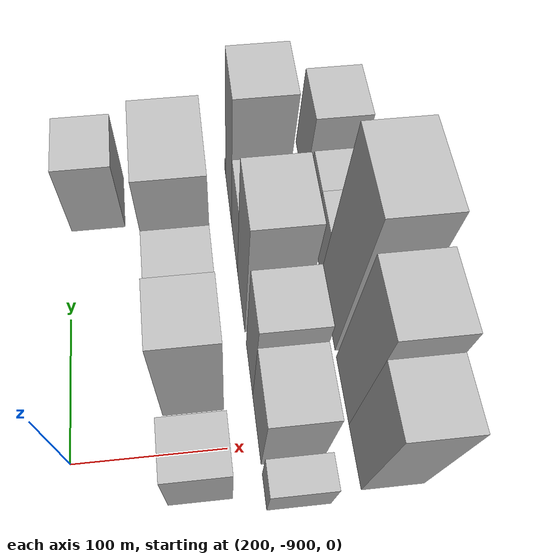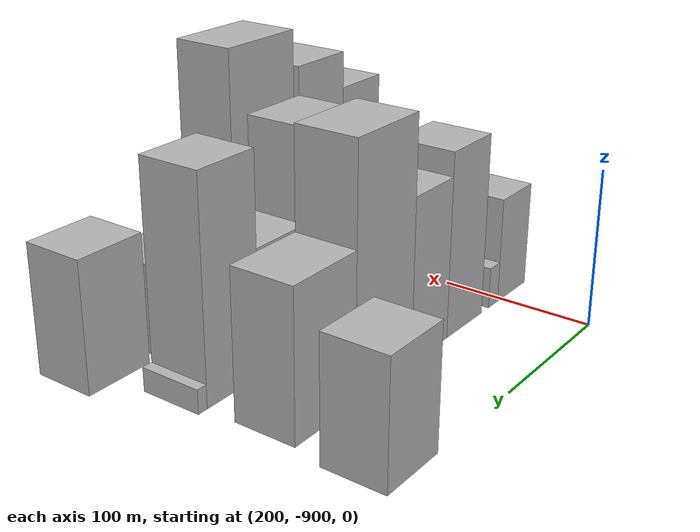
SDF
<sdf version="1.6">
 <world name="default">
  <model name="building_115">
   <static>1</static>
   <pose>220.0000 -704.5168 0 0.000000 0.000000 0.000000</pose>
   <link name="link">
    <pose>0 0 37.50 0 0 0</pose>
    <collision name="collision"><geometry><box><size>40.0000 44.8776 75.0000</size></box></geometry></collision>
    <visual name="visual">
     <cast_shadows>0</cast_shadows>
     <geometry><box><size>40.0000 44.8776 75.0000</size></box></geometry>
     <material>
      <script>
       <uri>model://HANNAS_wall/materials/scripts</uri>
       <uri>model://HANNAS_wall/materials/textures</uri>
       <name>vrc/HANNAS_wall</name>
      </script>
     </material>
    </visual>
   </link>
  </model>
  <model name="building_167">
   <static>1</static>
   <pose>280.0000 -913.1073 0 0.000000 0.000000 0.000000</pose>
   <link name="link">
    <pose>0 0 34.50 0 0 0</pose>
    <collision name="collision"><geometry><box><size>40.0000 35.7853 69.0000</size></box></geometry></collision>
    <visual name="visual">
     <cast_shadows>0</cast_shadows>
     <geometry><box><size>40.0000 35.7853 69.0000</size></box></geometry>
     <material>
      <script>
       <uri>model://HANNAS_wall/materials/scripts</uri>
       <uri>model://HANNAS_wall/materials/textures</uri>
       <name>vrc/HANNAS_wall</name>
      </script>
     </material>
    </visual>
   </link>
  </model>
  <model name="building_168">
   <static>1</static>
   <pose>280.0000 -889.4634 0 0.000000 0.000000 0.000000</pose>
   <link name="link">
    <pose>0 0 13.50 0 0 0</pose>
    <collision name="collision"><geometry><box><size>40.0000 11.5025 27.0000</size></box></geometry></collision>
    <visual name="visual">
     <cast_shadows>0</cast_shadows>
     <geometry><box><size>40.0000 11.5025 27.0000</size></box></geometry>
     <material>
      <script>
       <uri>model://HANNAS_wall/materials/scripts</uri>
       <uri>model://HANNAS_wall/materials/textures</uri>
       <name>vrc/HANNAS_wall</name>
      </script>
     </material>
    </visual>
   </link>
  </model>
  <model name="building_169">
   <static>1</static>
   <pose>280.0000 -854.1947 0 0.000000 0.000000 0.000000</pose>
   <link name="link">
    <pose>0 0 58.50 0 0 0</pose>
    <collision name="collision"><geometry><box><size>40.0000 41.0349 117.0000</size></box></geometry></collision>
    <visual name="visual">
     <cast_shadows>0</cast_shadows>
     <geometry><box><size>40.0000 41.0349 117.0000</size></box></geometry>
     <material>
      <script>
       <uri>model://HANNAS_wall/materials/scripts</uri>
       <uri>model://HANNAS_wall/materials/textures</uri>
       <name>vrc/HANNAS_wall</name>
      </script>
     </material>
    </visual>
   </link>
  </model>
  <model name="building_170">
   <static>1</static>
   <pose>280.0000 -814.3763 0 0.000000 0.000000 0.000000</pose>
   <link name="link">
    <pose>0 0 51.00 0 0 0</pose>
    <collision name="collision"><geometry><box><size>40.0000 38.6019 102.0000</size></box></geometry></collision>
    <visual name="visual">
     <cast_shadows>0</cast_shadows>
     <geometry><box><size>40.0000 38.6019 102.0000</size></box></geometry>
     <material>
      <script>
       <uri>model://HANNAS_wall/materials/scripts</uri>
       <uri>model://HANNAS_wall/materials/textures</uri>
       <name>vrc/HANNAS_wall</name>
      </script>
     </material>
    </visual>
   </link>
  </model>
  <model name="building_171">
   <static>1</static>
   <pose>280.0000 -767.6852 0 0.000000 0.000000 0.000000</pose>
   <link name="link">
    <pose>0 0 75.00 0 0 0</pose>
    <collision name="collision"><geometry><box><size>40.0000 54.7802 150.0000</size></box></geometry></collision>
    <visual name="visual">
     <cast_shadows>0</cast_shadows>
     <geometry><box><size>40.0000 54.7802 150.0000</size></box></geometry>
     <material>
      <script>
       <uri>model://HANNAS_wall/materials/scripts</uri>
       <uri>model://HANNAS_wall/materials/textures</uri>
       <name>vrc/HANNAS_wall</name>
      </script>
     </material>
    </visual>
   </link>
  </model>
  <model name="building_172">
   <static>1</static>
   <pose>280.0000 -714.1706 0 0.000000 0.000000 0.000000</pose>
   <link name="link">
    <pose>0 0 45.00 0 0 0</pose>
    <collision name="collision"><geometry><box><size>40.0000 52.2491 90.0000</size></box></geometry></collision>
    <visual name="visual">
     <cast_shadows>0</cast_shadows>
     <geometry><box><size>40.0000 52.2491 90.0000</size></box></geometry>
     <material>
      <script>
       <uri>model://HANNAS_wall/materials/scripts</uri>
       <uri>model://HANNAS_wall/materials/textures</uri>
       <name>vrc/HANNAS_wall</name>
      </script>
     </material>
    </visual>
   </link>
  </model>
  <model name="building_217">
   <static>1</static>
   <pose>340.0000 -929.1100 0 0.000000 0.000000 0.000000</pose>
   <link name="link">
    <pose>0 0 21.00 0 0 0</pose>
    <collision name="collision"><geometry><box><size>40.0000 21.7800 42.0000</size></box></geometry></collision>
    <visual name="visual">
     <cast_shadows>0</cast_shadows>
     <geometry><box><size>40.0000 21.7800 42.0000</size></box></geometry>
     <material>
      <script>
       <uri>model://HANNAS_wall/materials/scripts</uri>
       <uri>model://HANNAS_wall/materials/textures</uri>
       <name>vrc/HANNAS_wall</name>
      </script>
     </material>
    </visual>
   </link>
  </model>
  <model name="building_218">
   <static>1</static>
   <pose>340.0000 -889.9579 0 0.000000 0.000000 0.000000</pose>
   <link name="link">
    <pose>0 0 43.50 0 0 0</pose>
    <collision name="collision"><geometry><box><size>40.0000 44.5242 87.0000</size></box></geometry></collision>
    <visual name="visual">
     <cast_shadows>0</cast_shadows>
     <geometry><box><size>40.0000 44.5242 87.0000</size></box></geometry>
     <material>
      <script>
       <uri>model://HANNAS_wall/materials/scripts</uri>
       <uri>model://HANNAS_wall/materials/textures</uri>
       <name>vrc/HANNAS_wall</name>
      </script>
     </material>
    </visual>
   </link>
  </model>
  <model name="building_219">
   <static>1</static>
   <pose>340.0000 -848.9749 0 0.000000 0.000000 0.000000</pose>
   <link name="link">
    <pose>0 0 54.00 0 0 0</pose>
    <collision name="collision"><geometry><box><size>40.0000 37.4417 108.0000</size></box></geometry></collision>
    <visual name="visual">
     <cast_shadows>0</cast_shadows>
     <geometry><box><size>40.0000 37.4417 108.0000</size></box></geometry>
     <material>
      <script>
       <uri>model://HANNAS_wall/materials/scripts</uri>
       <uri>model://HANNAS_wall/materials/textures</uri>
       <name>vrc/HANNAS_wall</name>
      </script>
     </material>
    </visual>
   </link>
  </model>
  <model name="building_220">
   <static>1</static>
   <pose>340.0000 -797.6520 0 0.000000 0.000000 0.000000</pose>
   <link name="link">
    <pose>0 0 67.50 0 0 0</pose>
    <collision name="collision"><geometry><box><size>40.0000 47.2042 135.0000</size></box></geometry></collision>
    <visual name="visual">
     <cast_shadows>0</cast_shadows>
     <geometry><box><size>40.0000 47.2042 135.0000</size></box></geometry>
     <material>
      <script>
       <uri>model://HANNAS_wall/materials/scripts</uri>
       <uri>model://HANNAS_wall/materials/textures</uri>
       <name>vrc/HANNAS_wall</name>
      </script>
     </material>
    </visual>
   </link>
  </model>
  <model name="building_221">
   <static>1</static>
   <pose>340.0000 -753.0068 0 0.000000 0.000000 0.000000</pose>
   <link name="link">
    <pose>0 0 39.00 0 0 0</pose>
    <collision name="collision"><geometry><box><size>40.0000 42.0861 78.0000</size></box></geometry></collision>
    <visual name="visual">
     <cast_shadows>0</cast_shadows>
     <geometry><box><size>40.0000 42.0861 78.0000</size></box></geometry>
     <material>
      <script>
       <uri>model://HANNAS_wall/materials/scripts</uri>
       <uri>model://HANNAS_wall/materials/textures</uri>
       <name>vrc/HANNAS_wall</name>
      </script>
     </material>
    </visual>
   </link>
  </model>
  <model name="building_222">
   <static>1</static>
   <pose>340.0000 -710.3986 0 0.000000 0.000000 0.000000</pose>
   <link name="link">
    <pose>0 0 67.50 0 0 0</pose>
    <collision name="collision"><geometry><box><size>40.0000 43.1303 135.0000</size></box></geometry></collision>
    <visual name="visual">
     <cast_shadows>0</cast_shadows>
     <geometry><box><size>40.0000 43.1303 135.0000</size></box></geometry>
     <material>
      <script>
       <uri>model://HANNAS_wall/materials/scripts</uri>
       <uri>model://HANNAS_wall/materials/textures</uri>
       <name>vrc/HANNAS_wall</name>
      </script>
     </material>
    </visual>
   </link>
  </model>
  <model name="building_223">
   <static>1</static>
   <pose>340.0000 -685.3732 0 0.000000 0.000000 0.000000</pose>
   <link name="link">
    <pose>0 0 7.50 0 0 0</pose>
    <collision name="collision"><geometry><box><size>40.0000 6.9204 15.0000</size></box></geometry></collision>
    <visual name="visual">
     <cast_shadows>0</cast_shadows>
     <geometry><box><size>40.0000 6.9204 15.0000</size></box></geometry>
     <material>
      <script>
       <uri>model://HANNAS_wall/materials/scripts</uri>
       <uri>model://HANNAS_wall/materials/textures</uri>
       <name>vrc/HANNAS_wall</name>
      </script>
     </material>
    </visual>
   </link>
  </model>
  <model name="building_270">
   <static>1</static>
   <pose>400.0000 -913.4238 0 0.000000 0.000000 0.000000</pose>
   <link name="link">
    <pose>0 0 60.00 0 0 0</pose>
    <collision name="collision"><geometry><box><size>40.0000 41.1525 120.0000</size></box></geometry></collision>
    <visual name="visual">
     <cast_shadows>0</cast_shadows>
     <geometry><box><size>40.0000 41.1525 120.0000</size></box></geometry>
     <material>
      <script>
       <uri>model://HANNAS_wall/materials/scripts</uri>
       <uri>model://HANNAS_wall/materials/textures</uri>
       <name>vrc/HANNAS_wall</name>
      </script>
     </material>
    </visual>
   </link>
  </model>
  <model name="building_271">
   <static>1</static>
   <pose>400.0000 -869.4416 0 0.000000 0.000000 0.000000</pose>
   <link name="link">
    <pose>0 0 72.00 0 0 0</pose>
    <collision name="collision"><geometry><box><size>40.0000 46.8118 144.0000</size></box></geometry></collision>
    <visual name="visual">
     <cast_shadows>0</cast_shadows>
     <geometry><box><size>40.0000 46.8118 144.0000</size></box></geometry>
     <material>
      <script>
       <uri>model://HANNAS_wall/materials/scripts</uri>
       <uri>model://HANNAS_wall/materials/textures</uri>
       <name>vrc/HANNAS_wall</name>
      </script>
     </material>
    </visual>
   </link>
  </model>
  <model name="building_272">
   <static>1</static>
   <pose>400.0000 -811.5729 0 0.000000 0.000000 0.000000</pose>
   <link name="link">
    <pose>0 0 84.00 0 0 0</pose>
    <collision name="collision"><geometry><box><size>40.0000 58.9257 168.0000</size></box></geometry></collision>
    <visual name="visual">
     <cast_shadows>0</cast_shadows>
     <geometry><box><size>40.0000 58.9257 168.0000</size></box></geometry>
     <material>
      <script>
       <uri>model://HANNAS_wall/materials/scripts</uri>
       <uri>model://HANNAS_wall/materials/textures</uri>
       <name>vrc/HANNAS_wall</name>
      </script>
     </material>
    </visual>
   </link>
  </model>
  <model name="building_273">
   <static>1</static>
   <pose>400.0000 -765.2626 0 0.000000 0.000000 0.000000</pose>
   <link name="link">
    <pose>0 0 28.50 0 0 0</pose>
    <collision name="collision"><geometry><box><size>40.0000 33.6948 57.0000</size></box></geometry></collision>
    <visual name="visual">
     <cast_shadows>0</cast_shadows>
     <geometry><box><size>40.0000 33.6948 57.0000</size></box></geometry>
     <material>
      <script>
       <uri>model://HANNAS_wall/materials/scripts</uri>
       <uri>model://HANNAS_wall/materials/textures</uri>
       <name>vrc/HANNAS_wall</name>
      </script>
     </material>
    </visual>
   </link>
  </model>
  <model name="building_274">
   <static>1</static>
   <pose>400.0000 -731.3544 0 0.000000 0.000000 0.000000</pose>
   <link name="link">
    <pose>0 0 28.50 0 0 0</pose>
    <collision name="collision"><geometry><box><size>40.0000 34.1217 57.0000</size></box></geometry></collision>
    <visual name="visual">
     <cast_shadows>0</cast_shadows>
     <geometry><box><size>40.0000 34.1217 57.0000</size></box></geometry>
     <material>
      <script>
       <uri>model://HANNAS_wall/materials/scripts</uri>
       <uri>model://HANNAS_wall/materials/textures</uri>
       <name>vrc/HANNAS_wall</name>
      </script>
     </material>
    </visual>
   </link>
  </model>
  <model name="building_275">
   <static>1</static>
   <pose>400.0000 -683.2492 0 0.000000 0.000000 0.000000</pose>
   <link name="link">
    <pose>0 0 40.50 0 0 0</pose>
    <collision name="collision"><geometry><box><size>40.0000 46.0885 81.0000</size></box></geometry></collision>
    <visual name="visual">
     <cast_shadows>0</cast_shadows>
     <geometry><box><size>40.0000 46.0885 81.0000</size></box></geometry>
     <material>
      <script>
       <uri>model://HANNAS_wall/materials/scripts</uri>
       <uri>model://HANNAS_wall/materials/textures</uri>
       <name>vrc/HANNAS_wall</name>
      </script>
     </material>
    </visual>
   </link>
  </model>
 </world>
</sdf>
